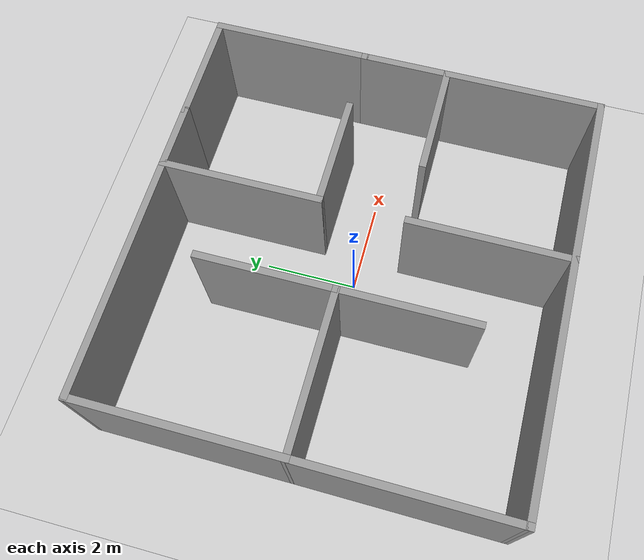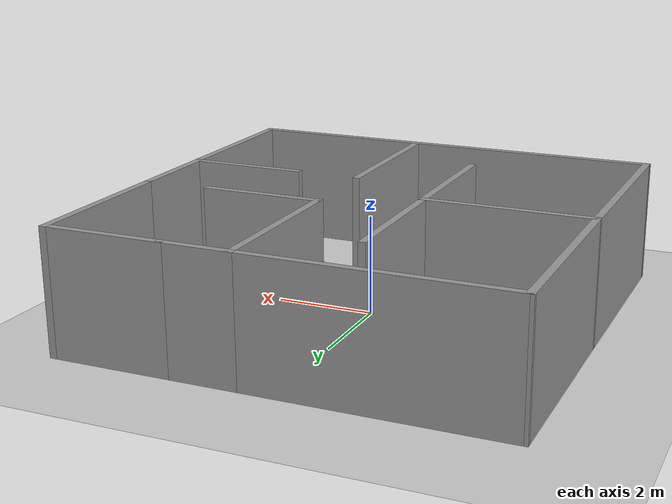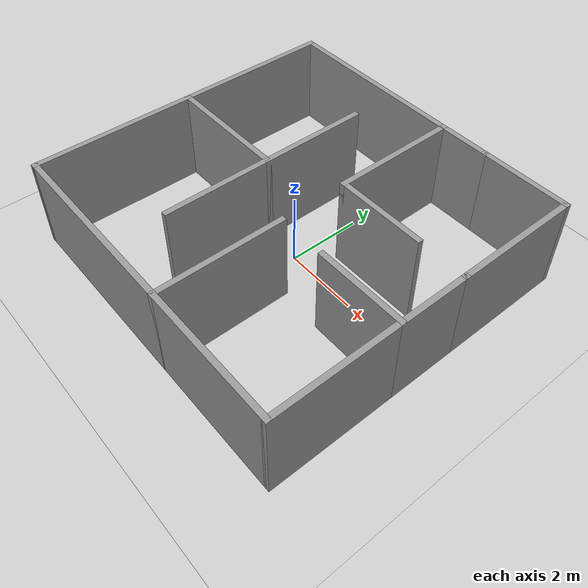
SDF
<sdf version="1.6">
 <world name="default">
  <light name="sun" type="directional">
   <pose>0 0 10 0 -0 0</pose>
   <diffuse>0.8 0.8 0.8 1</diffuse>
   <specular>0.2 0.2 0.2 1</specular>
   <attenuation>
    <range>1000</range>
    <constant>0.9</constant>
    <linear>0.01</linear>
    <quadratic>0.001</quadratic>
   </attenuation>
   <direction>-0.5 0.1 -0.9</direction>
  </light>
  <model name="ground_plane">
   <static>1</static>
   <link name="link">
    <collision name="collision">
     <geometry><plane><normal>0 0 1</normal><size>100 100</size></plane></geometry>
     <surface>
      <contact><collide_bitmask>65535</collide_bitmask></contact>
      <friction><ode><mu>100</mu><mu2>50</mu2></ode></friction>
     </surface>
    </collision>
    <visual name="visual">
     <cast_shadows>0</cast_shadows>
     <geometry><plane><normal>0 0 1</normal><size>100 100</size></plane></geometry>
     <material>
      <script><uri>file://media/materials/scripts/gazebo.material</uri><name>Gazebo/Grey</name></script>
     </material>
    </visual>
   </link>
  </model>
  <gravity>0 0 -9.8</gravity>
  <magnetic_field>6e-06 2.3e-05 -4.2e-05</magnetic_field>
  <atmosphere type="adiabatic"/>
  <physics name="default_physics" default="0" type="ode">
   <max_step_size>0.001</max_step_size>
   <real_time_factor>1</real_time_factor>
   <real_time_update_rate>1000</real_time_update_rate>
  </physics>
  <scene><ambient>0.4 0.4 0.4 1</ambient><background>0.7 0.7 0.7 1</background><shadows>1</shadows></scene>
  <audio><device>default</device></audio>
  <spherical_coordinates>
   <surface_model>EARTH_WGS84</surface_model>
   <latitude_deg>0</latitude_deg>
   <longitude_deg>0</longitude_deg>
   <elevation>0</elevation>
   <heading_deg>0</heading_deg>
  </spherical_coordinates>
  <model name="Untitled">
   <pose>-0.032389 -0.010166 0 0 -0 0</pose>
   <link name="Wall_102">
    <collision name="Wall_102_Collision">
     <geometry><box><size>1.5 0.15 2.5</size></box></geometry>
     <pose>0 0 1.25 0 -0 0</pose>
    </collision>
    <visual name="Wall_102_Visual">
     <pose>0 0 1.25 0 -0 0</pose>
     <geometry><box><size>1.5 0.15 2.5</size></box></geometry>
     <material>
      <script><uri>file://media/materials/scripts/gazebo.material</uri><name>Gazebo/Grey</name></script>
      <ambient>1 1 1 1</ambient>
     </material>
     <meta><layer>0</layer></meta>
    </visual>
    <pose>1.40026 4.27506 0 0 -0 3.14159</pose>
   </link>
   <link name="Wall_103">
    <collision name="Wall_103_Collision">
     <geometry><box><size>3.5 0.15 2.5</size></box></geometry>
     <pose>0 0 1.25 0 -0 0</pose>
    </collision>
    <visual name="Wall_103_Visual">
     <pose>0 0 1.25 0 -0 0</pose>
     <geometry><box><size>3.5 0.15 2.5</size></box></geometry>
     <material>
      <script><uri>file://media/materials/scripts/gazebo.material</uri><name>Gazebo/Grey</name></script>
      <ambient>1 1 1 1</ambient>
     </material>
     <meta><layer>0</layer></meta>
    </visual>
    <pose>0.725261 2.60006 0 0 -0 -1.5708</pose>
   </link>
   <link name="Wall_107">
    <collision name="Wall_107_Collision">
     <geometry><box><size>5.25 0.15 2.5</size></box></geometry>
     <pose>0 0 1.25 0 -0 0</pose>
    </collision>
    <visual name="Wall_107_Visual">
     <pose>0 0 1.25 0 -0 0</pose>
     <geometry><box><size>5.25 0.15 2.5</size></box></geometry>
     <material>
      <script><uri>file://media/materials/scripts/gazebo.material</uri><name>Gazebo/Grey</name></script>
      <ambient>1 1 1 1</ambient>
     </material>
     <meta><layer>0</layer></meta>
    </visual>
    <pose>-1.82474 4.27506 0 0 -0 3.14159</pose>
   </link>
   <link name="Wall_108">
    <collision name="Wall_108_Collision">
     <geometry><box><size>4.35005 0.15 2.5</size></box></geometry>
     <pose>0 0 1.25 0 -0 0</pose>
    </collision>
    <visual name="Wall_108_Visual">
     <pose>0 0 1.25 0 -0 0</pose>
     <geometry><box><size>4.35005 0.15 2.5</size></box></geometry>
     <material>
      <script><uri>file://media/materials/scripts/gazebo.material</uri><name>Gazebo/Grey</name></script>
      <ambient>1 1 1 1</ambient>
     </material>
     <meta><layer>0</layer></meta>
    </visual>
    <pose>-4.38453 2.17506 0 0 -0 -1.57546</pose>
   </link>
   <link name="Wall_41">
    <collision name="Wall_41_Collision">
     <geometry><box><size>4.5 0.15 2.5</size></box></geometry>
     <pose>0 0 1.25 0 -0 0</pose>
    </collision>
    <visual name="Wall_41_Visual">
     <pose>0 0 1.25 0 -0 0</pose>
     <geometry><box><size>4.5 0.15 2.5</size></box></geometry>
     <material>
      <script><uri>file://media/materials/scripts/gazebo.material</uri><name>Gazebo/Grey</name></script>
      <ambient>1 1 1 1</ambient>
     </material>
     <meta><layer>0</layer></meta>
    </visual>
    <pose>-4.40953 -2.09994 0 0 -0 1.5638</pose>
   </link>
   <link name="Wall_42">
    <collision name="Wall_42_Collision">
     <geometry><box><size>3.46958 0.15 2.5</size></box></geometry>
     <pose>0 0 1.25 0 -0 0</pose>
    </collision>
    <visual name="Wall_42_Visual">
     <pose>0 0 1.25 0 -0 0</pose>
     <geometry><box><size>3.46958 0.15 2.5</size></box></geometry>
     <material>
      <script><uri>file://media/materials/scripts/gazebo.material</uri><name>Gazebo/Grey</name></script>
      <ambient>1 1 1 1</ambient>
     </material>
     <meta><layer>0</layer></meta>
    </visual>
    <pose>-2.73453 0.07506 0 0 -0 0</pose>
   </link>
   <link name="Wall_46">
    <collision name="Wall_46_Collision">
     <geometry><box><size>9 0.15 2.5</size></box></geometry>
     <pose>0 0 1.25 0 -0 0</pose>
    </collision>
    <visual name="Wall_46_Visual">
     <pose>0 0 1.25 0 -0 0</pose>
     <geometry><box><size>9 0.15 2.5</size></box></geometry>
     <material>
      <script><uri>file://media/materials/scripts/gazebo.material</uri><name>Gazebo/Grey</name></script>
      <ambient>1 1 1 1</ambient>
     </material>
     <meta><layer>0</layer></meta>
    </visual>
    <pose>0.000261 -4.27494 0 0 -0 0</pose>
   </link>
   <link name="Wall_47">
    <collision name="Wall_47_Collision">
     <geometry><box><size>3.5 0.15 2.5</size></box></geometry>
     <pose>0 0 1.25 0 -0 0</pose>
    </collision>
    <visual name="Wall_47_Visual">
     <pose>0 0 1.25 0 -0 0</pose>
     <geometry><box><size>3.5 0.15 2.5</size></box></geometry>
     <material>
      <script><uri>file://media/materials/scripts/gazebo.material</uri><name>Gazebo/Grey</name></script>
      <ambient>1 1 1 1</ambient>
     </material>
     <meta><layer>0</layer></meta>
    </visual>
    <pose>4.42526 -2.59994 0 0 -0 1.5708</pose>
   </link>
   <link name="Wall_48">
    <collision name="Wall_48_Collision">
     <geometry><box><size>2.5 0.15 2.5</size></box></geometry>
     <pose>0 0 1.25 0 -0 0</pose>
    </collision>
    <visual name="Wall_48_Visual">
     <pose>0 0 1.25 0 -0 0</pose>
     <geometry><box><size>2.5 0.15 2.5</size></box></geometry>
     <material>
      <script><uri>file://media/materials/scripts/gazebo.material</uri><name>Gazebo/Grey</name></script>
      <ambient>1 1 1 1</ambient>
     </material>
     <meta><layer>0</layer></meta>
    </visual>
    <pose>3.25026 -0.92494 0 0 -0 3.14159</pose>
   </link>
   <link name="Wall_57">
    <collision name="Wall_57_Collision">
     <geometry><box><size>3.5 0.15 2.5</size></box></geometry>
     <pose>0 0 1.25 0 -0 0</pose>
    </collision>
    <visual name="Wall_57_Visual">
     <pose>0 0 1.25 0 -0 0</pose>
     <geometry><box><size>3.5 0.15 2.5</size></box></geometry>
     <material>
      <script><uri>file://media/materials/scripts/gazebo.material</uri><name>Gazebo/Grey</name></script>
      <ambient>1 1 1 1</ambient>
     </material>
     <meta><layer>0</layer></meta>
    </visual>
    <pose>0.725261 -2.59994 0 0 -0 -1.5708</pose>
   </link>
   <link name="Wall_59">
    <collision name="Wall_59_Collision">
     <geometry><box><size>3 0.15 2.5</size></box></geometry>
     <pose>0 0 1.25 0 -0 0</pose>
    </collision>
    <visual name="Wall_59_Visual">
     <pose>0 0 1.25 0 -0 0</pose>
     <geometry><box><size>3 0.15 2.5</size></box></geometry>
     <material>
      <script><uri>file://media/materials/scripts/gazebo.material</uri><name>Gazebo/Grey</name></script>
      <ambient>1 1 1 1</ambient>
     </material>
     <meta><layer>0</layer></meta>
    </visual>
    <pose>-1.07474 -1.34994 0 0 -0 -1.5708</pose>
   </link>
   <link name="Wall_61">
    <collision name="Wall_61_Collision">
     <geometry><box><size>2 0.15 2.5</size></box></geometry>
     <pose>0 0 1.25 0 -0 0</pose>
    </collision>
    <visual name="Wall_61_Visual">
     <pose>0 0 1.25 0 -0 0</pose>
     <geometry><box><size>2 0.15 2.5</size></box></geometry>
     <material>
      <script><uri>file://media/materials/scripts/gazebo.material</uri><name>Gazebo/Grey</name></script>
      <ambient>1 1 1 1</ambient>
     </material>
     <meta><layer>0</layer></meta>
    </visual>
    <pose>4.42526 6e-05 0 0 -0 1.5708</pose>
   </link>
   <link name="Wall_62">
    <collision name="Wall_62_Collision">
     <geometry><box><size>0.15 0.15 2.5</size></box></geometry>
     <pose>0 0 1.25 0 -0 0</pose>
    </collision>
    <visual name="Wall_62_Visual">
     <pose>0 0 1.25 0 -0 0</pose>
     <geometry><box><size>0.15 0.15 2.5</size></box></geometry>
     <material>
      <script><uri>file://media/materials/scripts/gazebo.material</uri><name>Gazebo/Grey</name></script>
      <ambient>1 1 1 1</ambient>
     </material>
     <meta><layer>0</layer></meta>
    </visual>
    <pose>4.42526 0.92506 0 0 -0 0</pose>
   </link>
   <link name="Wall_64">
    <collision name="Wall_64_Collision">
     <geometry><box><size>3.5 0.15 2.5</size></box></geometry>
     <pose>0 0 1.25 0 -0 0</pose>
    </collision>
    <visual name="Wall_64_Visual">
     <pose>0 0 1.25 0 -0 0</pose>
     <geometry><box><size>3.5 0.15 2.5</size></box></geometry>
     <material>
      <script><uri>file://media/materials/scripts/gazebo.material</uri><name>Gazebo/Grey</name></script>
      <ambient>1 1 1 1</ambient>
     </material>
     <meta><layer>0</layer></meta>
    </visual>
    <pose>4.42526 2.60006 0 0 -0 1.5708</pose>
   </link>
   <link name="Wall_68">
    <collision name="Wall_68_Collision">
     <geometry><box><size>3 0.15 2.5</size></box></geometry>
     <pose>0 0 1.25 0 -0 0</pose>
    </collision>
    <visual name="Wall_68_Visual">
     <pose>0 0 1.25 0 -0 0</pose>
     <geometry><box><size>3 0.15 2.5</size></box></geometry>
     <material>
      <script><uri>file://media/materials/scripts/gazebo.material</uri><name>Gazebo/Grey</name></script>
      <ambient>1 1 1 1</ambient>
     </material>
     <meta><layer>0</layer></meta>
    </visual>
    <pose>-1.07474 1.50006 0 0 -0 1.5708</pose>
   </link>
   <link name="Wall_80">
    <collision name="Wall_80_Collision">
     <geometry><box><size>2.5 0.15 2.5</size></box></geometry>
     <pose>0 0 1.25 0 -0 0</pose>
    </collision>
    <visual name="Wall_80_Visual">
     <pose>0 0 1.25 0 -0 0</pose>
     <geometry><box><size>2.5 0.15 2.5</size></box></geometry>
     <material>
      <script><uri>file://media/materials/scripts/gazebo.material</uri><name>Gazebo/Grey</name></script>
      <ambient>1 1 1 1</ambient>
     </material>
     <meta><layer>0</layer></meta>
    </visual>
    <pose>3.25026 4.27506 0 0 -0 3.14159</pose>
   </link>
   <link name="Wall_81">
    <collision name="Wall_81_Collision">
     <geometry><box><size>0.15 0.15 2.5</size></box></geometry>
     <pose>0 0 1.25 0 -0 0</pose>
    </collision>
    <visual name="Wall_81_Visual">
     <pose>0 0 1.25 0 -0 0</pose>
     <geometry><box><size>0.15 0.15 2.5</size></box></geometry>
     <material>
      <script><uri>file://media/materials/scripts/gazebo.material</uri><name>Gazebo/Grey</name></script>
      <ambient>1 1 1 1</ambient>
     </material>
     <meta><layer>0</layer></meta>
    </visual>
    <pose>2.07526 4.27506 0 0 -0 0</pose>
   </link>
   <link name="Wall_93">
    <collision name="Wall_93_Collision">
     <geometry><box><size>2.5 0.15 2.5</size></box></geometry>
     <pose>0 0 1.25 0 -0 0</pose>
    </collision>
    <visual name="Wall_93_Visual">
     <pose>0 0 1.25 0 -0 0</pose>
     <geometry><box><size>2.5 0.15 2.5</size></box></geometry>
     <material>
      <script><uri>file://media/materials/scripts/gazebo.material</uri><name>Gazebo/Grey</name></script>
      <ambient>1 1 1 1</ambient>
     </material>
     <meta><layer>0</layer></meta>
    </visual>
    <pose>1.90026 0.92506 0 0 -0 0</pose>
   </link>
   <static>1</static>
  </model>
 </world>
</sdf>
